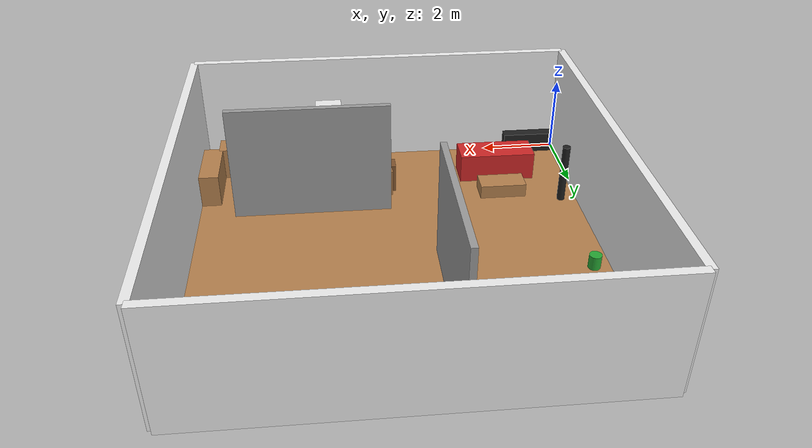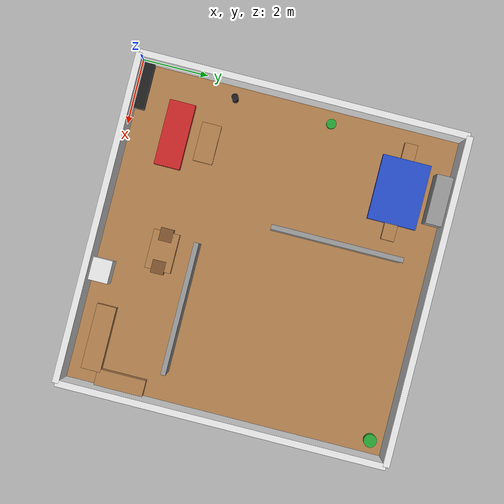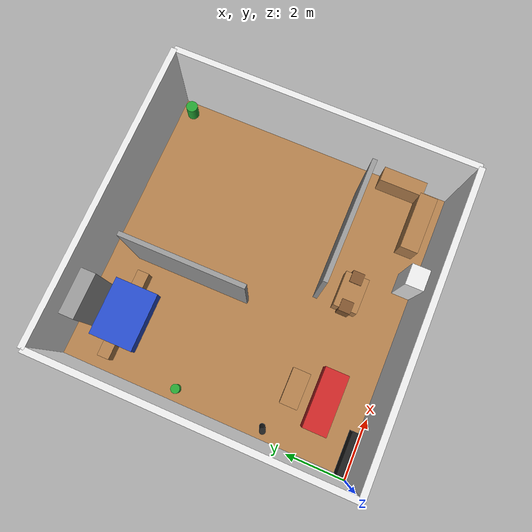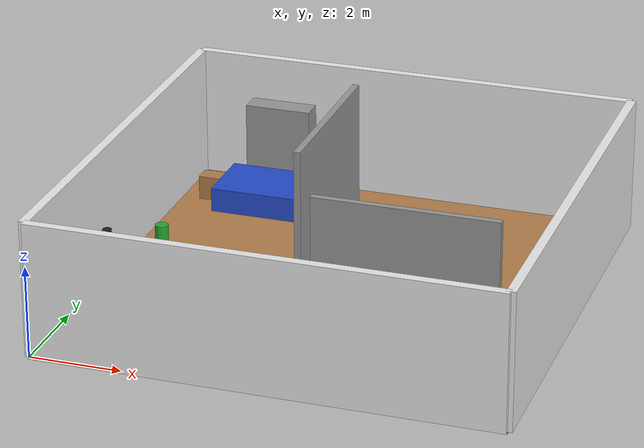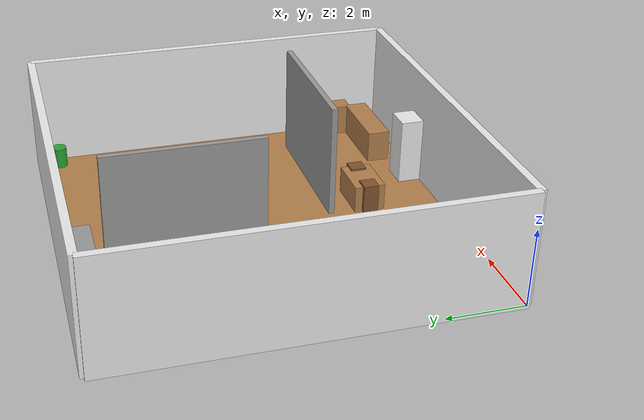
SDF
<?xml version="1.0" ?>
<sdf version="1.4">
  <world name="apartment_world">

    <!-- Configuración de física del mundo -->
    <physics type="ode">
      <gravity>0 0 -9.81</gravity>
      <ode>
        <solver>
          <type>quick</type>
          <iters>50</iters>
          <sor>1.0</sor>
        </solver>
        <constraints>
          <cfm>0.0</cfm>
          <erp>0.2</erp>
          <contact_max_correcting_vel>100.0</contact_max_correcting_vel>
          <contact_surface_layer>0.0</contact_surface_layer>
        </constraints>
      </ode>
      <real_time_update_rate>1000.0</real_time_update_rate>
      <max_step_size>0.001</max_step_size>
    </physics>

    <!-- Configuración de renderizado -->
    <scene>
      <ambient>0.4 0.4 0.4 1.0</ambient>
      <background>0.7 0.7 0.7 1.0</background>
      <shadows>true</shadows>
      <grid>false</grid>
    </scene>

    <!-- Iluminación principal -->
    <include>
      <uri>model://sun</uri>
    </include>

    <!-- Luces adicionales para interior -->
    <light name="living_room_light" type="point">
      <pose>2 2 2.5 0 0 0</pose>
      <diffuse>0.8 0.8 0.8 1</diffuse>
      <specular>0.2 0.2 0.2 1</specular>
      <attenuation>
        <range>10</range>
        <constant>0.1</constant>
        <linear>0.01</linear>
        <quadratic>0.001</quadratic>
      </attenuation>
      <cast_shadows>false</cast_shadows>
    </light>

    <light name="kitchen_light" type="point">
      <pose>6 1 2.5 0 0 0</pose>
      <diffuse>0.9 0.9 0.7 1</diffuse>
      <specular>0.2 0.2 0.2 1</specular>
      <attenuation>
        <range>8</range>
        <constant>0.1</constant>
        <linear>0.01</linear>
        <quadratic>0.001</quadratic>
      </attenuation>
      <cast_shadows>false</cast_shadows>
    </light>

    <light name="bedroom_light" type="point">
      <pose>2 6 2.5 0 0 0</pose>
      <diffuse>0.7 0.7 0.9 1</diffuse>
      <specular>0.1 0.1 0.1 1</specular>
      <attenuation>
        <range>8</range>
        <constant>0.1</constant>
        <linear>0.01</linear>
        <quadratic>0.001</quadratic>
      </attenuation>
      <cast_shadows>false</cast_shadows>
    </light>

    <!-- ==================== ESTRUCTURA DEL APARTAMENTO ==================== -->

    <!-- Piso principal -->
    <model name="floor">
      <static>true</static>
      <link name="link">
        <collision name="collision">
          <geometry>
            <box>
              <size>10 10 0.1</size>
            </box>
          </geometry>
        </collision>
        <visual name="visual">
          <geometry>
            <box>
              <size>10 10 0.1</size>
            </box>
          </geometry>
          <material>
            <script>
              <uri>file://media/materials/scripts/gazebo.material</uri>
              <name>Gazebo/Wood</name>
            </script>
          </material>
        </visual>
      </link>
      <pose>5 5 0 0 0 0</pose>
    </model>

    <!-- ==================== PAREDES EXTERIORES ==================== -->

    <!-- Pared Norte -->
    <model name="wall_north">
      <static>true</static>
      <link name="link">
        <collision name="collision">
          <geometry>
            <box>
              <size>10 0.2 3</size>
            </box>
          </geometry>
        </collision>
        <visual name="visual">
          <geometry>
            <box>
              <size>10 0.2 3</size>
            </box>
          </geometry>
          <material>
            <script>
              <uri>file://media/materials/scripts/gazebo.material</uri>
              <name>Gazebo/White</name>
            </script>
          </material>
        </visual>
      </link>
      <pose>5 10 1.5 0 0 0</pose>
    </model>

    <!-- Pared Sur -->
    <model name="wall_south">
      <static>true</static>
      <link name="link">
        <collision name="collision">
          <geometry>
            <box>
              <size>10 0.2 3</size>
            </box>
          </geometry>
        </collision>
        <visual name="visual">
          <geometry>
            <box>
              <size>10 0.2 3</size>
            </box>
          </geometry>
          <material>
            <script>
              <uri>file://media/materials/scripts/gazebo.material</uri>
              <name>Gazebo/White</name>
            </script>
          </material>
        </visual>
      </link>
      <pose>5 0 1.5 0 0 0</pose>
    </model>

    <!-- Pared Este -->
    <model name="wall_east">
      <static>true</static>
      <link name="link">
        <collision name="collision">
          <geometry>
            <box>
              <size>0.2 10 3</size>
            </box>
          </geometry>
        </collision>
        <visual name="visual">
          <geometry>
            <box>
              <size>0.2 10 3</size>
            </box>
          </geometry>
          <material>
            <script>
              <uri>file://media/materials/scripts/gazebo.material</uri>
              <name>Gazebo/White</name>
            </script>
          </material>
        </visual>
      </link>
      <pose>10 5 1.5 0 0 0</pose>
    </model>

    <!-- Pared Oeste -->
    <model name="wall_west">
      <static>true</static>
      <link name="link">
        <collision name="collision">
          <geometry>
            <box>
              <size>0.2 10 3</size>
            </box>
          </geometry>
        </collision>
        <visual name="visual">
          <geometry>
            <box>
              <size>0.2 10 3</size>
            </box>
          </geometry>
          <material>
            <script>
              <uri>file://media/materials/scripts/gazebo.material</uri>
              <name>Gazebo/White</name>
            </script>
          </material>
        </visual>
      </link>
      <pose>0 5 1.5 0 0 0</pose>
    </model>

    <!-- ==================== PAREDES INTERIORES ==================== -->

    <!-- Pared separación cocina-sala (horizontal) -->
    <model name="wall_kitchen_living">
      <static>true</static>
      <link name="link">
        <collision name="collision">
          <geometry>
            <box>
              <size>4 0.15 3</size>
            </box>
          </geometry>
        </collision>
        <visual name="visual">
          <geometry>
            <box>
              <size>4 0.15 3</size>
            </box>
          </geometry>
          <material>
            <script>
              <uri>file://media/materials/scripts/gazebo.material</uri>
              <name>Gazebo/Grey</name>
            </script>
          </material>
        </visual>
      </link>
      <pose>7 3 1.5 0 0 0</pose>
    </model>

    <!-- Pared separación habitación-sala (vertical) -->
    <model name="wall_bedroom_living">
      <static>true</static>
      <link name="link">
        <collision name="collision">
          <geometry>
            <box>
              <size>0.15 4 3</size>
            </box>
          </geometry>
        </collision>
        <visual name="visual">
          <geometry>
            <box>
              <size>0.15 4 3</size>
            </box>
          </geometry>
          <material>
            <script>
              <uri>file://media/materials/scripts/gazebo.material</uri>
              <name>Gazebo/Grey</name>
            </script>
          </material>
        </visual>
      </link>
      <pose>4 7 1.5 0 0 0</pose>
    </model>

    <!-- ==================== MUEBLES DE SALA ==================== -->

    <!-- Sofá -->
    <model name="sofa">
      <static>true</static>
      <link name="link">
        <collision name="collision">
          <geometry>
            <box>
              <size>2 0.8 0.8</size>
            </box>
          </geometry>
        </collision>
        <visual name="visual">
          <geometry>
            <box>
              <size>2 0.8 0.8</size>
            </box>
          </geometry>
          <material>
            <script>
              <uri>file://media/materials/scripts/gazebo.material</uri>
              <name>Gazebo/Red</name>
            </script>
          </material>
        </visual>
      </link>
      <pose>2 1.5 0.4 0 0 0</pose>
    </model>

    <!-- Mesa de centro -->
    <model name="coffee_table">
      <static>true</static>
      <link name="link">
        <collision name="collision">
          <geometry>
            <box>
              <size>1.2 0.6 0.4</size>
            </box>
          </geometry>
        </collision>
        <visual name="visual">
          <geometry>
            <box>
              <size>1.2 0.6 0.4</size>
            </box>
          </geometry>
          <material>
            <script>
              <uri>file://media/materials/scripts/gazebo.material</uri>
              <name>Gazebo/Wood</name>
            </script>
          </material>
        </visual>
      </link>
      <pose>2 2.5 0.2 0 0 0</pose>
    </model>

    <!-- TV Stand -->
    <model name="tv_stand">
      <static>true</static>
      <link name="link">
        <collision name="collision">
          <geometry>
            <box>
              <size>1.5 0.4 0.6</size>
            </box>
          </geometry>
        </collision>
        <visual name="visual">
          <geometry>
            <box>
              <size>1.5 0.4 0.6</size>
            </box>
          </geometry>
          <material>
            <script>
              <uri>file://media/materials/scripts/gazebo.material</uri>
              <name>Gazebo/Black</name>
            </script>
          </material>
        </visual>
      </link>
      <pose>0.75 0.2 0.3 0 0 0</pose>
    </model>

    <!-- ==================== MUEBLES DE COCINA ==================== -->

    <!-- Mueble de cocina inferior (L-shape) -->
    <model name="kitchen_counter_1">
      <static>true</static>
      <link name="link">
        <collision name="collision">
          <geometry>
            <box>
              <size>2 0.6 0.9</size>
            </box>
          </geometry>
        </collision>
        <visual name="visual">
          <geometry>
            <box>
              <size>2 0.6 0.9</size>
            </box>
          </geometry>
          <material>
            <script>
              <uri>file://media/materials/scripts/gazebo.material</uri>
              <name>Gazebo/Wood</name>
            </script>
          </material>
        </visual>
      </link>
      <pose>8.5 0.8 0.45 0 0 0</pose>
    </model>

    <model name="kitchen_counter_2">
      <static>true</static>
      <link name="link">
        <collision name="collision">
          <geometry>
            <box>
              <size>0.6 1.5 0.9</size>
            </box>
          </geometry>
        </collision>
        <visual name="visual">
          <geometry>
            <box>
              <size>0.6 1.5 0.9</size>
            </box>
          </geometry>
          <material>
            <script>
              <uri>file://media/materials/scripts/gazebo.material</uri>
              <name>Gazebo/Wood</name>
            </script>
          </material>
        </visual>
      </link>
      <pose>9.7 1.75 0.45 0 0 0</pose>
    </model>

    <!-- Refrigerador -->
    <model name="refrigerator">
      <static>true</static>
      <link name="link">
        <collision name="collision">
          <geometry>
            <box>
              <size>0.7 0.7 1.8</size>
            </box>
          </geometry>
        </collision>
        <visual name="visual">
          <geometry>
            <box>
              <size>0.7 0.7 1.8</size>
            </box>
          </geometry>
          <material>
            <script>
              <uri>file://media/materials/scripts/gazebo.material</uri>
              <name>Gazebo/White</name>
            </script>
          </material>
        </visual>
      </link>
      <pose>6.5 0.35 0.9 0 0 0</pose>
    </model>

    <!-- Mesa de comedor -->
    <model name="dining_table">
      <static>true</static>
      <link name="link">
        <collision name="collision">
          <geometry>
            <box>
              <size>1.2 0.8 0.75</size>
            </box>
          </geometry>
        </collision>
        <visual name="visual">
          <geometry>
            <box>
              <size>1.2 0.8 0.75</size>
            </box>
          </geometry>
          <material>
            <script>
              <uri>file://media/materials/scripts/gazebo.material</uri>
              <name>Gazebo/Wood</name>
            </script>
          </material>
        </visual>
      </link>
      <pose>5.5 2 0.375 0 0 0</pose>
    </model>

    <!-- Sillas de comedor -->
    <model name="chair_1">
      <static>true</static>
      <link name="link">
        <collision name="collision">
          <geometry>
            <box>
              <size>0.4 0.4 0.8</size>
            </box>
          </geometry>
        </collision>
        <visual name="visual">
          <geometry>
            <box>
              <size>0.4 0.4 0.8</size>
            </box>
          </geometry>
          <material>
            <script>
              <uri>file://media/materials/scripts/gazebo.material</uri>
              <name>Gazebo/Brown</name>
            </script>
          </material>
        </visual>
      </link>
      <pose>5 2 0.4 0 0 0</pose>
    </model>

    <model name="chair_2">
      <static>true</static>
      <link name="link">
        <collision name="collision">
          <geometry>
            <box>
              <size>0.4 0.4 0.8</size>
            </box>
          </geometry>
        </collision>
        <visual name="visual">
          <geometry>
            <box>
              <size>0.4 0.4 0.8</size>
            </box>
          </geometry>
          <material>
            <script>
              <uri>file://media/materials/scripts/gazebo.material</uri>
              <name>Gazebo/Brown</name>
            </script>
          </material>
        </visual>
      </link>
      <pose>6 2 0.4 0 0 0</pose>
    </model>

    <!-- ==================== MUEBLES DE HABITACIÓN ==================== -->

    <!-- Cama -->
    <model name="bed">
      <static>true</static>
      <link name="link">
        <collision name="collision">
          <geometry>
            <box>
              <size>2 1.5 0.6</size>
            </box>
          </geometry>
        </collision>
        <visual name="visual">
          <geometry>
            <box>
              <size>2 1.5 0.6</size>
            </box>
          </geometry>
          <material>
            <script>
              <uri>file://media/materials/scripts/gazebo.material</uri>
              <name>Gazebo/Blue</name>
            </script>
          </material>
        </visual>
      </link>
      <pose>2 8.5 0.3 0 0 0</pose>
    </model>

    <!-- Mesa de noche -->
    <model name="nightstand_1">
      <static>true</static>
      <link name="link">
        <collision name="collision">
          <geometry>
            <box>
              <size>0.5 0.4 0.6</size>
            </box>
          </geometry>
        </collision>
        <visual name="visual">
          <geometry>
            <box>
              <size>0.5 0.4 0.6</size>
            </box>
          </geometry>
          <material>
            <script>
              <uri>file://media/materials/scripts/gazebo.material</uri>
              <name>Gazebo/Wood</name>
            </script>
          </material>
        </visual>
      </link>
      <pose>0.75 8.5 0.3 0 0 0</pose>
    </model>

    <model name="nightstand_2">
      <static>true</static>
      <link name="link">
        <collision name="collision">
          <geometry>
            <box>
              <size>0.5 0.4 0.6</size>
            </box>
          </geometry>
        </collision>
        <visual name="visual">
          <geometry>
            <box>
              <size>0.5 0.4 0.6</size>
            </box>
          </geometry>
          <material>
            <script>
              <uri>file://media/materials/scripts/gazebo.material</uri>
              <name>Gazebo/Wood</name>
            </script>
          </material>
        </visual>
      </link>
      <pose>3.25 8.5 0.3 0 0 0</pose>
    </model>

    <!-- Armario -->
    <model name="wardrobe">
      <static>true</static>
      <link name="link">
        <collision name="collision">
          <geometry>
            <box>
              <size>1.5 0.6 2</size>
            </box>
          </geometry>
        </collision>
        <visual name="visual">
          <geometry>
            <box>
              <size>1.5 0.6 2</size>
            </box>
          </geometry>
          <material>
            <script>
              <uri>file://media/materials/scripts/gazebo.material</uri>
              <name>Gazebo/Grey</name>
            </script>
          </material>
        </visual>
      </link>
      <pose>2 9.7 1 0 0 0</pose>
    </model>

    <!-- ==================== OBJETOS ADICIONALES ==================== -->

    <!-- Lámpara de pie -->
    <model name="floor_lamp">
      <static>true</static>
      <link name="link">
        <collision name="collision">
          <geometry>
            <cylinder>
              <radius>0.1</radius>
              <length>1.6</length>
            </cylinder>
          </geometry>
        </collision>
        <visual name="visual">
          <geometry>
            <cylinder>
              <radius>0.1</radius>
              <length>1.6</length>
            </cylinder>
          </geometry>
          <material>
            <script>
              <uri>file://media/materials/scripts/gazebo.material</uri>
              <name>Gazebo/Black</name>
            </script>
          </material>
        </visual>
      </link>
      <pose>0.5 3 0.8 0 0 0</pose>
    </model>

    <!-- Plantas decorativas -->
    <model name="plant_1">
      <static>true</static>
      <link name="link">
        <collision name="collision">
          <geometry>
            <cylinder>
              <radius>0.2</radius>
              <length>0.6</length>
            </cylinder>
          </geometry>
        </collision>
        <visual name="visual">
          <geometry>
            <cylinder>
              <radius>0.2</radius>
              <length>0.6</length>
            </cylinder>
          </geometry>
          <material>
            <script>
              <uri>file://media/materials/scripts/gazebo.material</uri>
              <name>Gazebo/Green</name>
            </script>
          </material>
        </visual>
      </link>
      <pose>9.5 9.5 0.3 0 0 0</pose>
    </model>

    <model name="plant_2">
      <static>true</static>
      <link name="link">
        <collision name="collision">
          <geometry>
            <cylinder>
              <radius>0.15</radius>
              <length>0.4</length>
            </cylinder>
          </geometry>
        </collision>
        <visual name="visual">
          <geometry>
            <cylinder>
              <radius>0.15</radius>
              <length>0.4</length>
            </cylinder>
          </geometry>
          <material>
            <script>
              <uri>file://media/materials/scripts/gazebo.material</uri>
              <name>Gazebo/Green</name>
            </script>
          </material>
        </visual>
      </link>
      <pose>0.5 6 0.2 0 0 0</pose>
    </model>

  </world>
</sdf>
